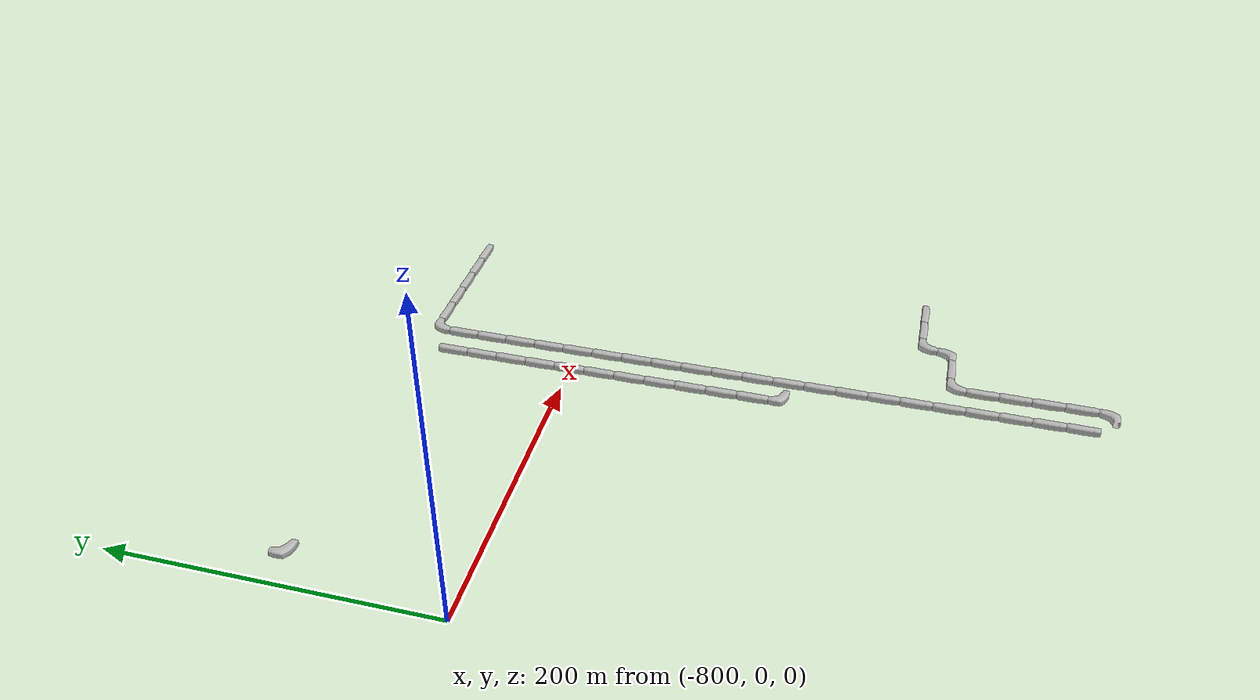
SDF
<sdf version="1.6">
 <world name="cave_8000_0">
  <include>
   <static>true</static>
   <name>cave_-23_-11</name>
   <pose>-460 -220 0 0 0 1.5707963267948966</pose>
   <uri>model://cave_straight_20m</uri>
  </include>
  <include>
   <static>true</static>
   <name>cave_-24_-11</name>
   <pose>-480 -220 0 0 0 1.5707963267948966</pose>
   <uri>model://cave_straight_20m</uri>
  </include>
  <include>
   <static>true</static>
   <name>cave_-25_-11</name>
   <pose>-500 -220 0 0 0 -1.5707963267948966</pose>
   <uri>model://cave_L_20m</uri>
  </include>
  <include>
   <static>true</static>
   <name>cave_-25_-12</name>
   <pose>-500 -240 0 0 0 1.5707963267948966</pose>
   <uri>model://cave_L_20m</uri>
  </include>
  <include>
   <static>true</static>
   <name>cave_-26_-12</name>
   <pose>-520 -240 0 0 0 1.5707963267948966</pose>
   <uri>model://cave_straight_20m</uri>
  </include>
  <include>
   <static>true</static>
   <name>cave_-27_-12</name>
   <pose>-540 -240 0 0 0 -1.5707963267948966</pose>
   <uri>model://cave_L_20m</uri>
  </include>
  <include>
   <static>true</static>
   <name>cave_-27_-13</name>
   <pose>-540 -260 0 0 0 0.0</pose>
   <uri>model://cave_straight_20m</uri>
  </include>
  <include>
   <static>true</static>
   <name>cave_-27_-14</name>
   <pose>-540 -280 0 0 0 0.0</pose>
   <uri>model://cave_straight_20m</uri>
  </include>
  <include>
   <static>true</static>
   <name>cave_-27_-15</name>
   <pose>-540 -300 0 0 0 0.0</pose>
   <uri>model://cave_straight_20m</uri>
  </include>
  <include>
   <static>true</static>
   <name>cave_-27_-16</name>
   <pose>-540 -320 0 0 0 0.0</pose>
   <uri>model://cave_straight_20m</uri>
  </include>
  <include>
   <static>true</static>
   <name>cave_-27_-17</name>
   <pose>-540 -340 0 0 0 1.5707963267948966</pose>
   <uri>model://cave_L_20m</uri>
  </include>
  <include>
   <static>true</static>
   <name>cave_-28_-16</name>
   <pose>-560 -320 0 0 0 0.0</pose>
   <uri>model://cave_straight_20m</uri>
  </include>
  <include>
   <static>true</static>
   <name>cave_-28_-15</name>
   <pose>-560 -300 0 0 0 0.0</pose>
   <uri>model://cave_straight_20m</uri>
  </include>
  <include>
   <static>true</static>
   <name>cave_-28_-14</name>
   <pose>-560 -280 0 0 0 0.0</pose>
   <uri>model://cave_straight_20m</uri>
  </include>
  <include>
   <static>true</static>
   <name>cave_-28_-13</name>
   <pose>-560 -260 0 0 0 0.0</pose>
   <uri>model://cave_straight_20m</uri>
  </include>
  <include>
   <static>true</static>
   <name>cave_-28_-12</name>
   <pose>-560 -240 0 0 0 0.0</pose>
   <uri>model://cave_straight_20m</uri>
  </include>
  <include>
   <static>true</static>
   <name>cave_-28_-11</name>
   <pose>-560 -220 0 0 0 0.0</pose>
   <uri>model://cave_straight_20m</uri>
  </include>
  <include>
   <static>true</static>
   <name>cave_-28_-10</name>
   <pose>-560 -200 0 0 0 0.0</pose>
   <uri>model://cave_straight_20m</uri>
  </include>
  <include>
   <static>true</static>
   <name>cave_-28_-9</name>
   <pose>-560 -180 0 0 0 0.0</pose>
   <uri>model://cave_straight_20m</uri>
  </include>
  <include>
   <static>true</static>
   <name>cave_-28_-8</name>
   <pose>-560 -160 0 0 0 0.0</pose>
   <uri>model://cave_straight_20m</uri>
  </include>
  <include>
   <static>true</static>
   <name>cave_-28_-7</name>
   <pose>-560 -140 0 0 0 0.0</pose>
   <uri>model://cave_straight_20m</uri>
  </include>
  <include>
   <static>true</static>
   <name>cave_-28_-6</name>
   <pose>-560 -120 0 0 0 0.0</pose>
   <uri>model://cave_straight_20m</uri>
  </include>
  <include>
   <static>true</static>
   <name>cave_-28_-5</name>
   <pose>-560 -100 0 0 0 0.0</pose>
   <uri>model://cave_straight_20m</uri>
  </include>
  <include>
   <static>true</static>
   <name>cave_-28_-4</name>
   <pose>-560 -80 0 0 0 0.0</pose>
   <uri>model://cave_straight_20m</uri>
  </include>
  <include>
   <static>true</static>
   <name>cave_-28_-3</name>
   <pose>-560 -60 0 0 0 0.0</pose>
   <uri>model://cave_straight_20m</uri>
  </include>
  <include>
   <static>true</static>
   <name>cave_-28_-2</name>
   <pose>-560 -40 0 0 0 0.0</pose>
   <uri>model://cave_straight_20m</uri>
  </include>
  <include>
   <static>true</static>
   <name>cave_-28_-1</name>
   <pose>-560 -20 0 0 0 0.0</pose>
   <uri>model://cave_straight_20m</uri>
  </include>
  <include>
   <static>true</static>
   <name>cave_-28_0</name>
   <pose>-560 0 0 0 0 0.0</pose>
   <uri>model://cave_straight_20m</uri>
  </include>
  <include>
   <static>true</static>
   <name>cave_-28_1</name>
   <pose>-560 20 0 0 0 0.0</pose>
   <uri>model://cave_straight_20m</uri>
  </include>
  <include>
   <static>true</static>
   <name>cave_-28_2</name>
   <pose>-560 40 0 0 0 0.0</pose>
   <uri>model://cave_straight_20m</uri>
  </include>
  <include>
   <static>true</static>
   <name>cave_-28_3</name>
   <pose>-560 60 0 0 0 0.0</pose>
   <uri>model://cave_straight_20m</uri>
  </include>
  <include>
   <static>true</static>
   <name>cave_-28_4</name>
   <pose>-560 80 0 0 0 0.0</pose>
   <uri>model://cave_straight_20m</uri>
  </include>
  <include>
   <static>true</static>
   <name>cave_-28_5</name>
   <pose>-560 100 0 0 0 -1.5707963267948966</pose>
   <uri>model://cave_L_20m</uri>
  </include>
  <include>
   <static>true</static>
   <name>cave_-27_5</name>
   <pose>-540 100 0 0 0 1.5707963267948966</pose>
   <uri>model://cave_straight_20m</uri>
  </include>
  <include>
   <static>true</static>
   <name>cave_-26_5</name>
   <pose>-520 100 0 0 0 1.5707963267948966</pose>
   <uri>model://cave_straight_20m</uri>
  </include>
  <include>
   <static>true</static>
   <name>cave_-25_5</name>
   <pose>-500 100 0 0 0 1.5707963267948966</pose>
   <uri>model://cave_straight_20m</uri>
  </include>
  <include>
   <static>true</static>
   <name>cave_-24_5</name>
   <pose>-480 100 0 0 0 1.5707963267948966</pose>
   <uri>model://cave_straight_20m</uri>
  </include>
  <include>
   <static>true</static>
   <name>cave_-23_5</name>
   <pose>-460 100 0 0 0 1.5707963267948966</pose>
   <uri>model://cave_straight_20m</uri>
  </include>
  <include>
   <static>true</static>
   <name>cave_-39_5</name>
   <pose>-780 100 0 0 0 0.0</pose>
   <uri>model://cave_L_20m</uri>
  </include>
  <include>
   <static>true</static>
   <name>cave_-29_4</name>
   <pose>-580 80 0 0 0 0.0</pose>
   <uri>model://cave_straight_20m</uri>
  </include>
  <include>
   <static>true</static>
   <name>cave_-29_3</name>
   <pose>-580 60 0 0 0 0.0</pose>
   <uri>model://cave_straight_20m</uri>
  </include>
  <include>
   <static>true</static>
   <name>cave_-29_2</name>
   <pose>-580 40 0 0 0 0.0</pose>
   <uri>model://cave_straight_20m</uri>
  </include>
  <include>
   <static>true</static>
   <name>cave_-29_1</name>
   <pose>-580 20 0 0 0 0.0</pose>
   <uri>model://cave_straight_20m</uri>
  </include>
  <include>
   <static>true</static>
   <name>cave_-29_0</name>
   <pose>-580 0 0 0 0 0.0</pose>
   <uri>model://cave_straight_20m</uri>
  </include>
  <include>
   <static>true</static>
   <name>cave_-29_-1</name>
   <pose>-580 -20 0 0 0 0.0</pose>
   <uri>model://cave_straight_20m</uri>
  </include>
  <include>
   <static>true</static>
   <name>cave_-29_-2</name>
   <pose>-580 -40 0 0 0 0.0</pose>
   <uri>model://cave_straight_20m</uri>
  </include>
  <include>
   <static>true</static>
   <name>cave_-29_-3</name>
   <pose>-580 -60 0 0 0 0.0</pose>
   <uri>model://cave_straight_20m</uri>
  </include>
  <include>
   <static>true</static>
   <name>cave_-29_-4</name>
   <pose>-580 -80 0 0 0 0.0</pose>
   <uri>model://cave_straight_20m</uri>
  </include>
  <include>
   <static>true</static>
   <name>cave_-29_-5</name>
   <pose>-580 -100 0 0 0 0.0</pose>
   <uri>model://cave_straight_20m</uri>
  </include>
  <include>
   <static>true</static>
   <name>cave_-29_-6</name>
   <pose>-580 -120 0 0 0 0.0</pose>
   <uri>model://cave_straight_20m</uri>
  </include>
  <include>
   <static>true</static>
   <name>cave_-29_-7</name>
   <pose>-580 -140 0 0 0 0.0</pose>
   <uri>model://cave_L_20m</uri>
  </include>
 </world>
</sdf>
